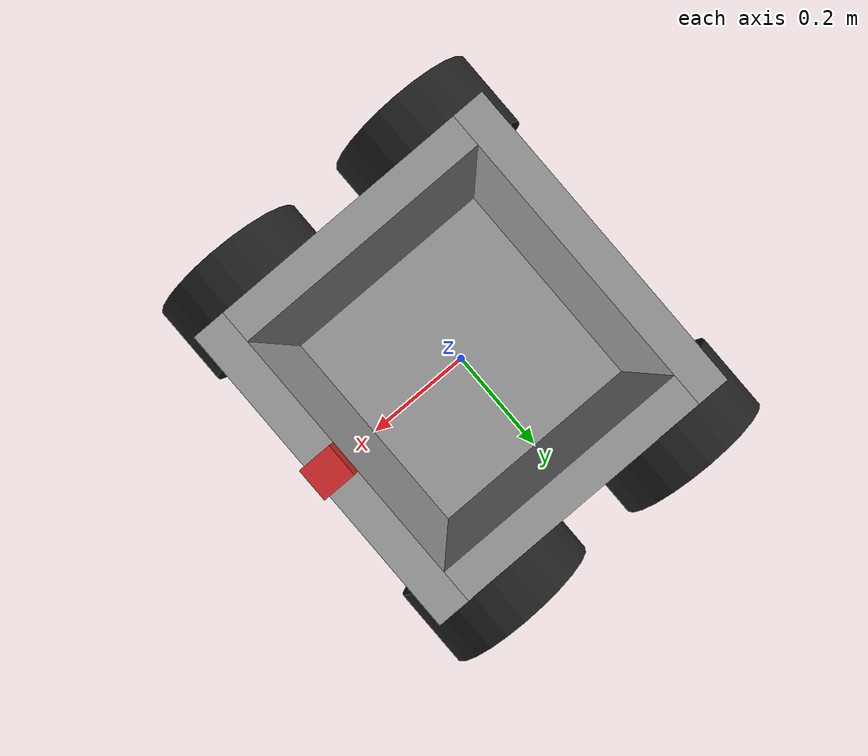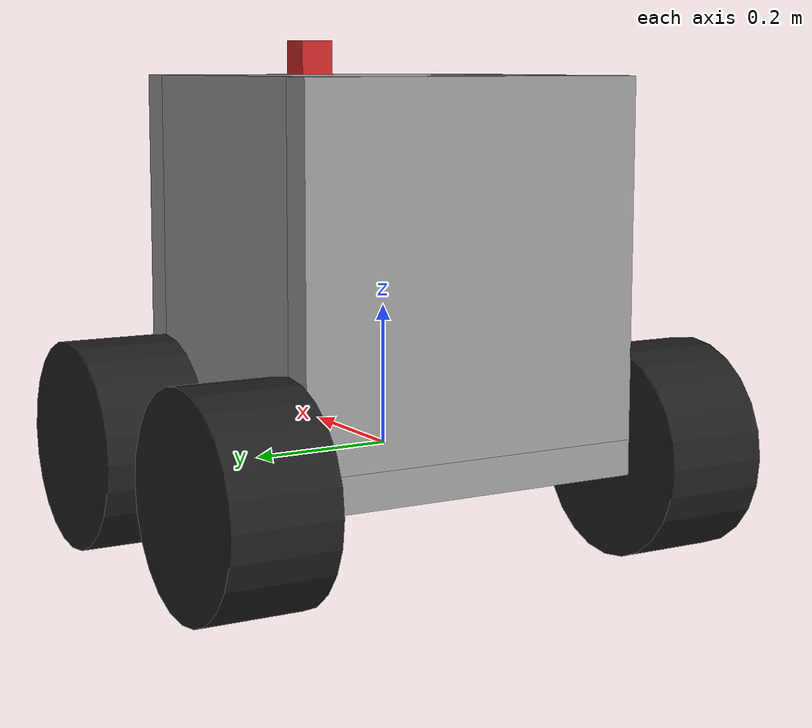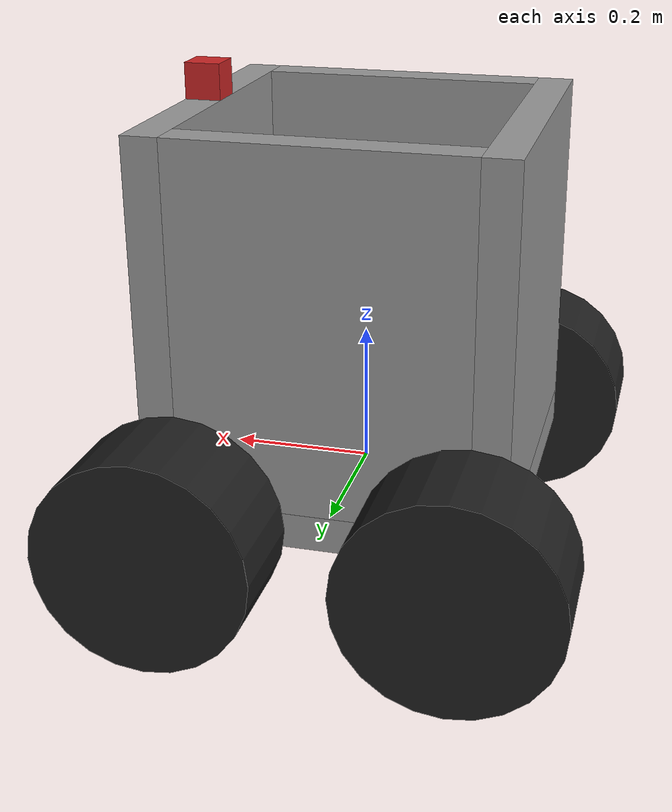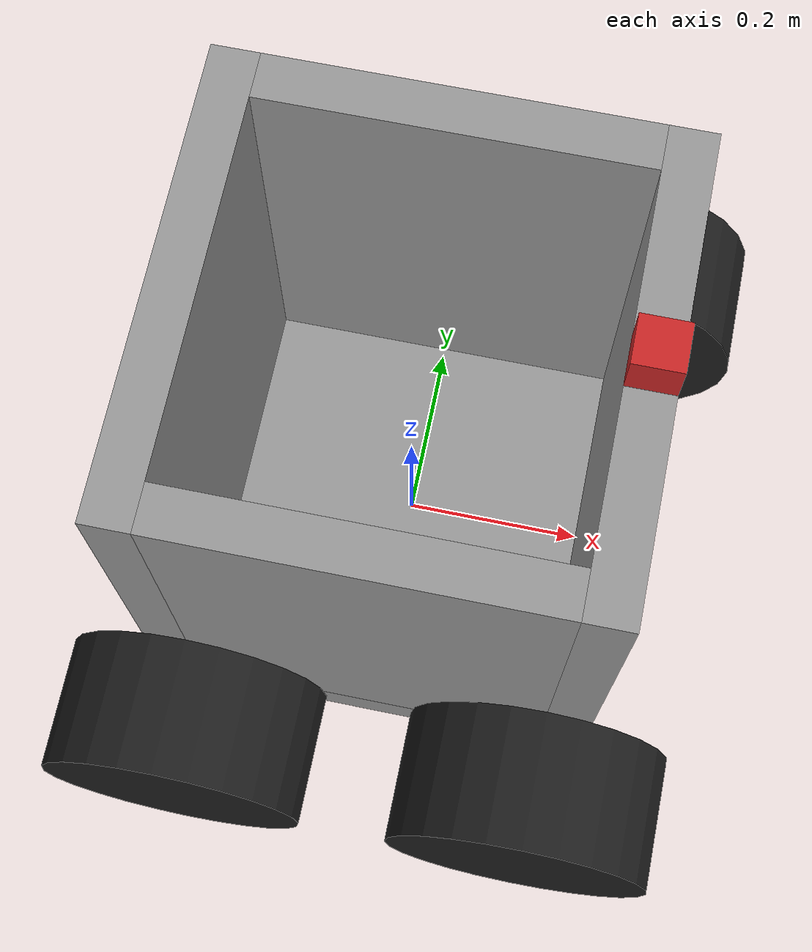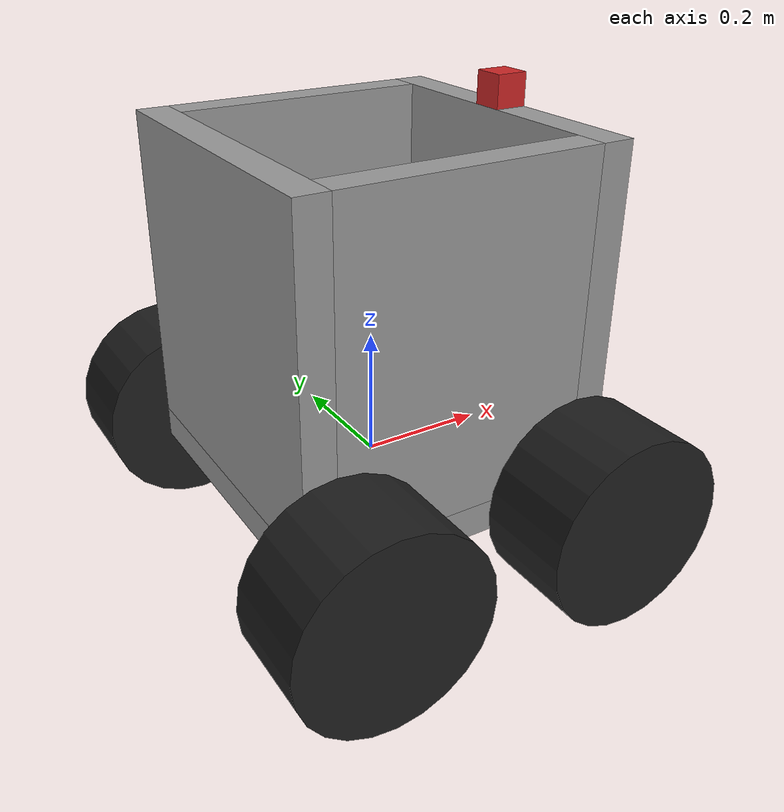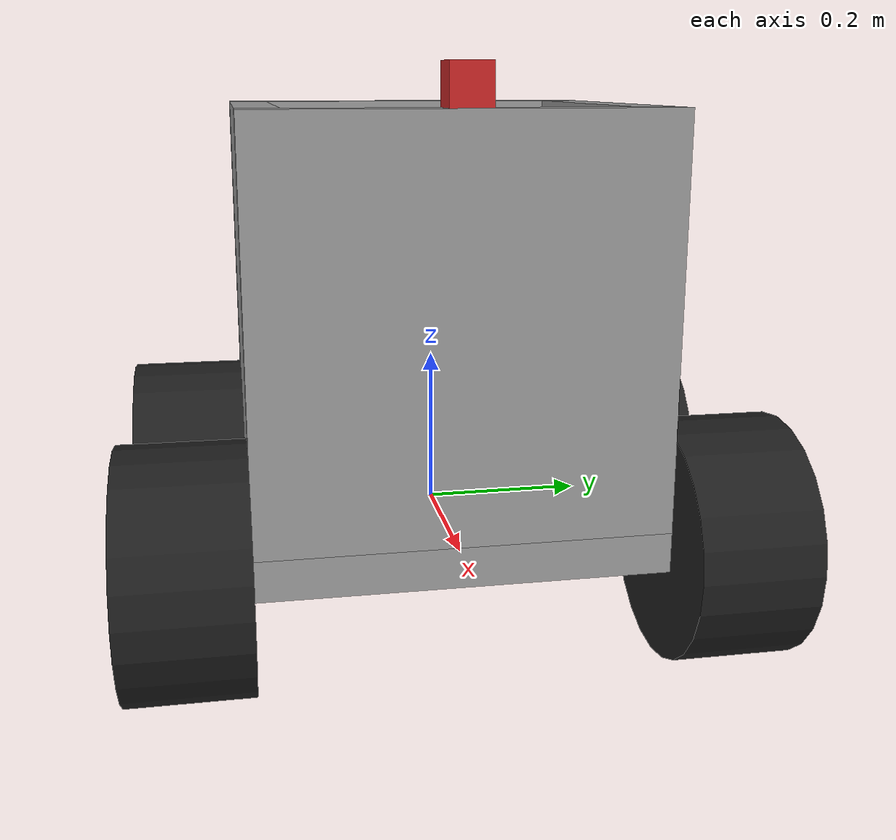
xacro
<?xml version="1.0"?>
<robot name="mainbot" xmlns:xacro="http://ros.org/wiki/xacro">

	<xacro:include filename="$(find project)/urdf/common_properties.xacro"/>
	<xacro:include filename="$(find project)/urdf/mainbot.gazebo.xacro"/>

	<xacro:macro name="visual1" params="length radius color">
                <visual>
                        <geometry>
                                <cylinder length="${length}" radius="${radius}"/>
                        </geometry>
                        <material name="${color}"/>
                </visual>
                <collision>
                        <geometry>
                                <cylinder length="${length}" radius="${radius}"/>
                        </geometry>
                </collision>
        </xacro:macro>

        <xacro:macro name="visual2" params="length width height color">
                <visual>
                        <geometry>
                                <box size="${length} ${width} ${height}"/>
                        </geometry>
                        <material name="${color}"/>
                </visual>
                <collision>
                        <geometry>
                                <box size="${length} ${width} ${height}"/>
                        </geometry>
                </collision>
        </xacro:macro>

        <xacro:macro name="inertial_" params="mass">
                <inertial>
                        <mass value="${mass}"/>
                        <inertia ixx="1.0" ixy="0.0" ixz="0.0" iyy="1.0" iyz="0.0" izz="1.0" />
                </inertial>
        </xacro:macro>

	<link name="base_footprint"/>
	<joint name="fixed" type="fixed">
		<parent link="base_footprint"/>
		<child link="link1"/>
		<origin rpy="0 0 ${pi/2}"/>
	</joint>

	<link name="link1">
		<xacro:visual2 length="0.5" width="0.5" height="0.05" color="grey"/>
		<xacro:inertial_ mass="1"/>
	</link>

	<link name="right_wall">
		<xacro:visual2 length="0.05" width="0.4" height="0.5" color="grey"/>
		<xacro:inertial_ mass="1"/>
	</link>

	<joint name="right_wall_joint" type="fixed">
		<parent link="link1"/>
		<child link="right_wall"/>
		<origin xyz="0.225 0 0.275"/>
	</joint>

	<link name="left_wall">
		<xacro:visual2 length="0.05" width="0.4" height="0.5" color="grey"/>
		<xacro:inertial_ mass="1"/>
	</link>

	<joint name="left_wall_joint" type="fixed">
		<parent link="link1"/>
		<child link="left_wall"/>
		<origin xyz="-0.225 0 0.275"/>
	</joint>

	<link name="front_wall">
		<xacro:visual2 length="0.5" width="0.05" height="0.5" color="grey"/>
		<xacro:inertial_ mass="1"/>
	</link>

	<joint name="front_wall_joint" type="fixed">
		<parent link="link1"/>
		<child link="front_wall"/>
		<origin xyz="0 0.225 0.275"/>
	</joint>

	<link name="back_wall">
		<xacro:visual2 length="0.5" width="0.05" height="0.5" color="grey"/>
		<xacro:inertial_ mass="1"/>
	</link>

	<joint name="back_wall_joint" type="fixed">
		<parent link="link1"/>
		<child link="back_wall"/>
		<origin xyz="0 -0.225 0.275"/>
	</joint>

	<link name="front_right_wheel">
		<xacro:visual1 length="0.15" radius="0.15" color="black"/>
		<inertial>
			<mass value="2.8498940e-02" />
			<inertia ixx="1.1175580e-05" ixy="-4.2369783e-11" ixz="-5.9381719e-09" iyy="1.1192413e-05" iyz="-1.4400107e-11" izz="2.0712558e-05" />
		</inertial>

	</link>

	<joint name="front_right_wheel_joint" type="continuous">
		<parent link="link1"/>
                <child link="front_right_wheel"/>
		<origin xyz="0.325 0.2 0" rpy="0 ${pi/2} 0"/>
                <axis xyz="0 0 1"/>
	</joint>

	<link name="back_right_wheel">
		<xacro:visual1 length="0.15" radius="0.15" color="black"/>
		<inertial>
			<mass value="2.8498940e-02" />
			<inertia ixx="1.1175580e-05" ixy="-4.2369783e-11" ixz="-5.9381719e-09" iyy="1.1192413e-05" iyz="-1.4400107e-11" izz="2.0712558e-05" />
		</inertial>
	</link>

	<joint name="back_right_wheel_joint" type="continuous">
		<parent link="link1"/>
                <child link="back_right_wheel"/>
		<origin xyz="0.325 -0.2 0" rpy="0 ${pi/2} 0"/>
		<axis xyz="0 0 1"/>
	</joint>

	<link name="front_left_wheel">
		<xacro:visual1 length="0.15" radius="0.15" color="black"/>
		<inertial>
			<mass value="2.8498940e-02" />
			<inertia ixx="1.1175580e-05" ixy="-4.2369783e-11" ixz="-5.9381719e-09" iyy="1.1192413e-05" iyz="-1.4400107e-11" izz="2.0712558e-05" />
		</inertial>
	</link>

	<joint name="front_left_wheel_joint" type="continuous">
		<parent link="link1"/>
                <child link="front_left_wheel"/>
		<origin xyz="-0.325 0.2 0" rpy="0 ${pi/2} 0"/>
                <axis xyz="0 0 1"/>
	</joint>

	<link name="back_left_wheel">
		<xacro:visual1 length="0.15" radius="0.15" color="black"/>
		<inertial>
			<mass value="2.8498940e-02" />
			<inertia ixx="1.1175580e-05" ixy="-4.2369783e-11" ixz="-5.9381719e-09" iyy="1.1192413e-05" iyz="-1.4400107e-11" izz="2.0712558e-05" />
		</inertial>
	</link>

	<joint name="back_left_wheel_joint" type="continuous">
		<parent link="link1"/>
                <child link="back_left_wheel"/>
		<origin xyz="-0.325 -0.2 0" rpy="0 ${pi/2} 0"/>
                <axis xyz="0 0 1"/>
	</joint>

	<link name="laser_scan">
		<xacro:visual2 length="0.05" width="0.05" height="0.05" color="red"/>
		<xacro:inertial_ mass="0.01"/>
	</link>

	<joint name="laser_joint" type="fixed">
		<parent link="front_wall"/>
		<child link="laser_scan"/>
		<origin xyz="0 -0.45 0.275"/>
	</joint>

	<link name="imu_link"/>

	<joint name="imu_joint" type="fixed">
		<parent link="link1"/>
		<child link="imu_link"/>
		<origin xyz="0 0 0.025" rpy="0 0 0"/>
	</joint>

</robot>
